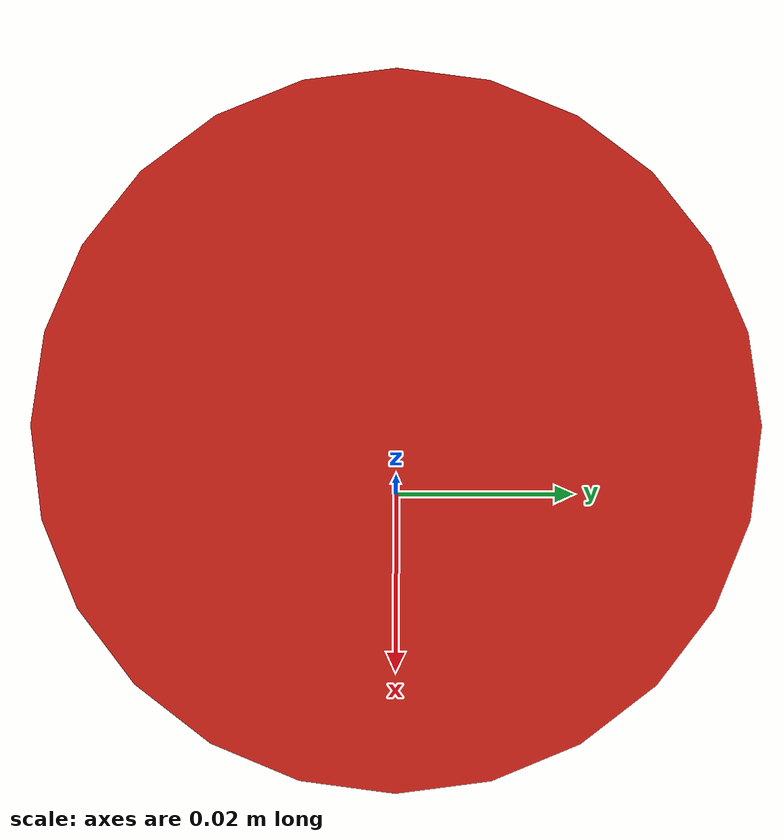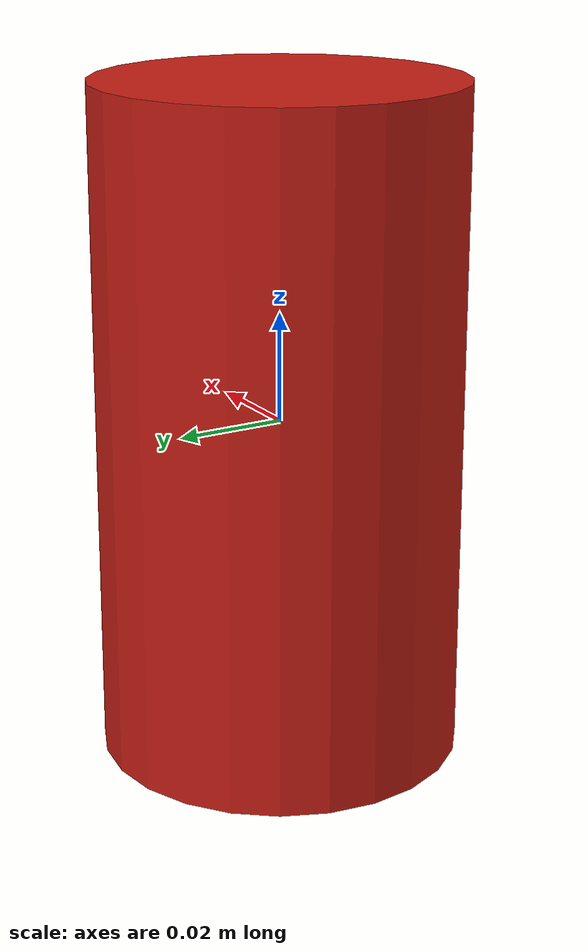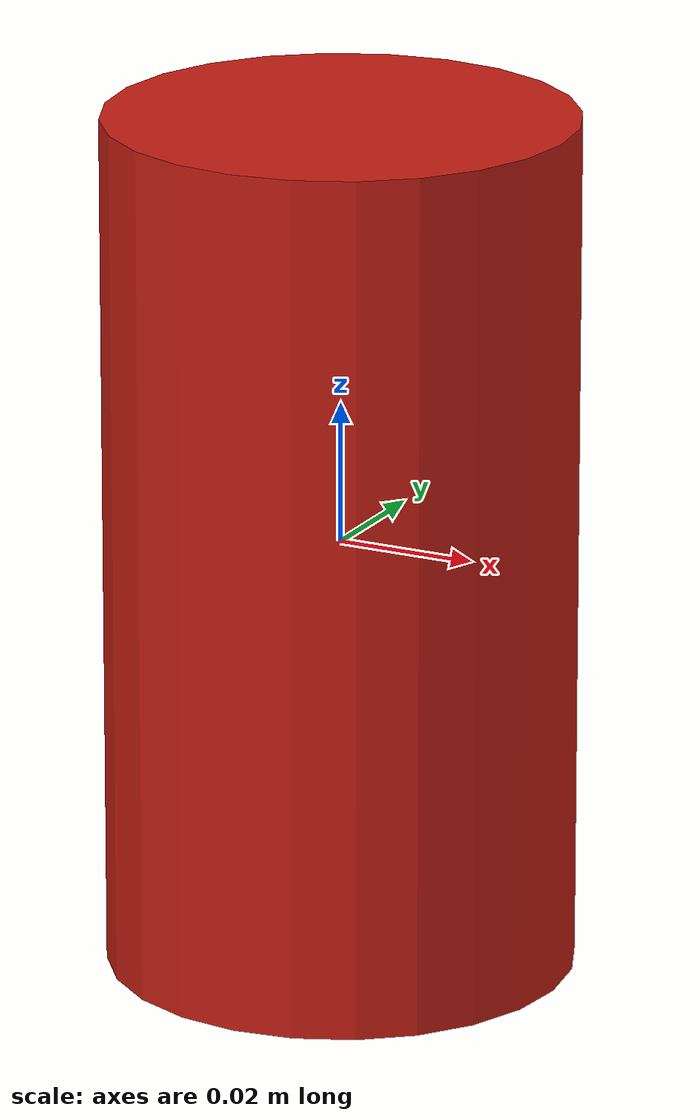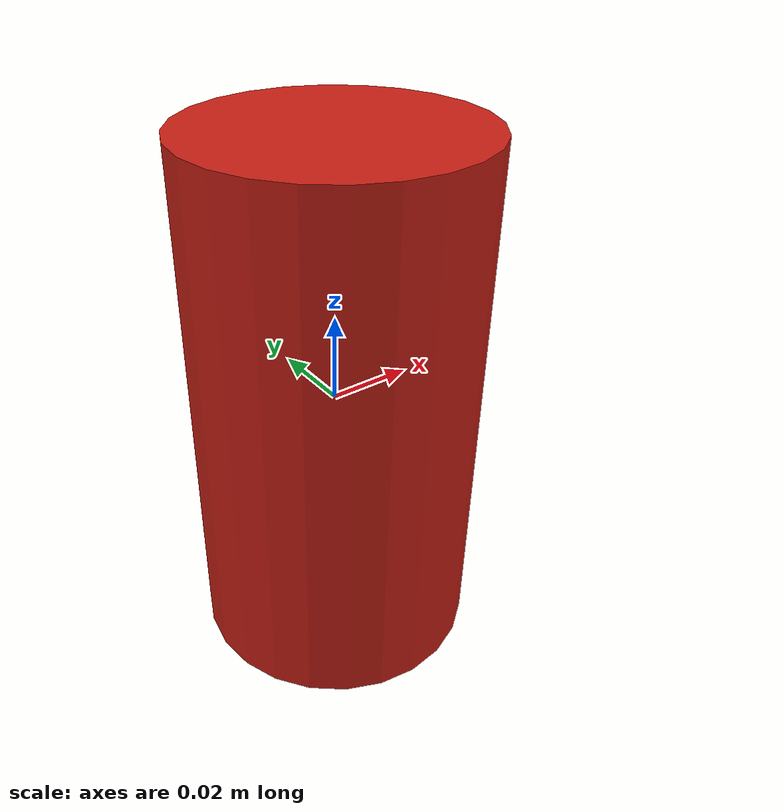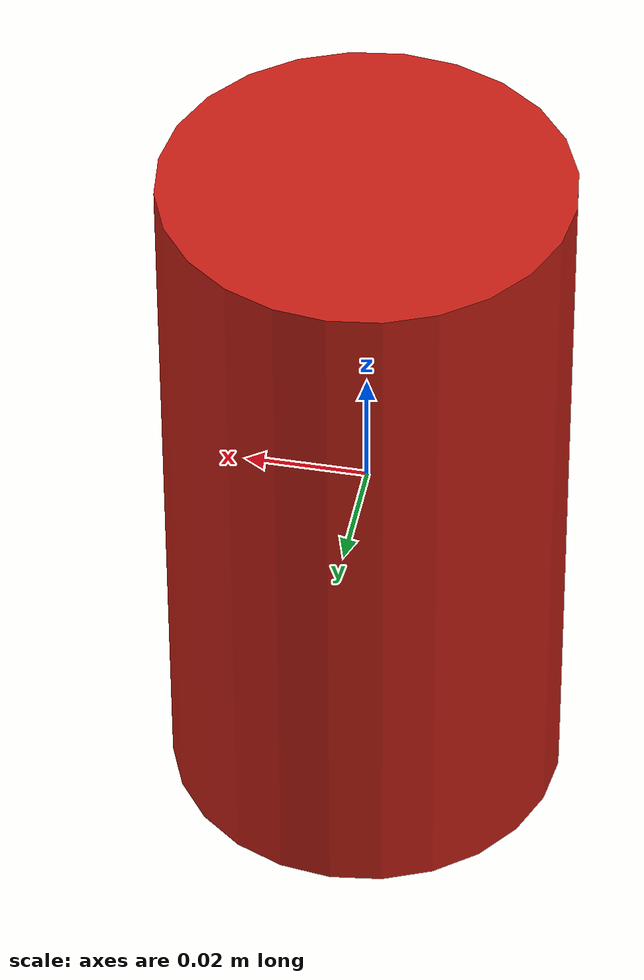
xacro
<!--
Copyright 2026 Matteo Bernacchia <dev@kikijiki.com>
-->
<?xml version="1.0"?>
<!-- SPDX-License-Identifier: MIT -->
<robot name="restocker_product" xmlns:xacro="http://www.ros.org/wiki/xacro">
  <xacro:arg name="radius" default="0.033"/>
  <xacro:arg name="height" default="0.122"/>
  <!-- A box product (CMB-119) sets `box_size` to "x y z" metres (width, depth, height); radius and
       height are then unused. Empty keeps the cylinder. -->
  <xacro:arg name="box_size" default=""/>
  <xacro:arg name="mass" default="0.355"/>
  <xacro:arg name="rgba" default="0.78 0.12 0.08 1.0"/>
  <xacro:arg name="friction" default="0.65"/>
  <xacro:arg name="static" default="false"/>
  <xacro:arg name="label_texture" default=""/>
  <xacro:arg name="visual_mesh" default=""/>
  <xacro:include filename="$(find restocker_description)/urdf/inertial_macros.xacro"/>

  <xacro:property name="product_radius" value="$(arg radius)"/>
  <xacro:property name="product_height" value="$(arg height)"/>
  <xacro:property name="product_mass" value="$(arg mass)"/>
  <xacro:property name="box_size" value="$(arg box_size)"/>
  <xacro:property name="is_box" value="${box_size != ''}"/>
  <xacro:if value="${is_box}">
    <xacro:property name="box_x" value="${float(box_size.split()[0])}"/>
    <xacro:property name="box_y" value="${float(box_size.split()[1])}"/>
    <xacro:property name="box_z" value="${float(box_size.split()[2])}"/>
  </xacro:if>
  <xacro:property name="label_texture" value="$(arg label_texture)"/>
  <xacro:property name="visual_mesh" value="$(arg visual_mesh)"/>

  <link name="product_body">
    <visual name="product_body_visual">
      <xacro:if value="${visual_mesh == '' and not is_box}">
        <geometry><cylinder radius="${product_radius}" length="${product_height}"/></geometry>
      </xacro:if>
      <xacro:if value="${visual_mesh == '' and is_box}">
        <geometry><box size="${box_x} ${box_y} ${box_z}"/></geometry>
      </xacro:if>
      <xacro:unless value="${visual_mesh == ''}">
        <geometry><mesh filename="file://${visual_mesh}"/></geometry>
      </xacro:unless>
      <material name="product_material"><color rgba="$(arg rgba)"/></material>
    </visual>
    <collision name="product_body_collision">
      <xacro:unless value="${is_box}">
        <geometry><cylinder radius="${product_radius}" length="${product_height}"/></geometry>
      </xacro:unless>
      <xacro:if value="${is_box}">
        <geometry><box size="${box_x} ${box_y} ${box_z}"/></geometry>
      </xacro:if>
    </collision>
    <xacro:unless value="${is_box}">
      <xacro:cylinder_inertial
        mass="${product_mass}" radius="${product_radius}" length="${product_height}"
        xyz="0 0 0" rpy="0 0 0"/>
    </xacro:unless>
    <xacro:if value="${is_box}">
      <xacro:box_inertial
        mass="${product_mass}" x="${box_x}" y="${box_y}" z="${box_z}" xyz="0 0 0" rpy="0 0 0"/>
    </xacro:if>
  </link>

  <gazebo reference="product_body">
    <mu1>$(arg friction)</mu1>
    <mu2>$(arg friction)</mu2>
    <kp>100000</kp>
    <kd>1</kd>
    <xacro:unless value="${label_texture == ''}">
      <visual>
        <material>
          <pbr>
            <metal>
              <albedo_map>${label_texture}</albedo_map>
              <metalness>0.0</metalness>
              <roughness>0.9</roughness>
            </metal>
          </pbr>
        </material>
      </visual>
    </xacro:unless>
  </gazebo>
  <gazebo><static>$(arg static)</static></gazebo>
</robot>

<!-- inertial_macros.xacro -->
<!-- SPDX-License-Identifier: MIT -->
<robot xmlns:xacro="http://www.ros.org/wiki/xacro">
  <xacro:macro name="box_inertial" params="mass x y z xyz rpy">
    <inertial>
      <origin xyz="${xyz}" rpy="${rpy}"/>
      <mass value="${mass}"/>
      <inertia
        ixx="${mass * (y * y + z * z) / 12.0}"
        ixy="0.0"
        ixz="0.0"
        iyy="${mass * (x * x + z * z) / 12.0}"
        iyz="0.0"
        izz="${mass * (x * x + y * y) / 12.0}"/>
    </inertial>
  </xacro:macro>

  <xacro:macro name="cylinder_inertial" params="mass radius length xyz rpy">
    <inertial>
      <origin xyz="${xyz}" rpy="${rpy}"/>
      <mass value="${mass}"/>
      <inertia
        ixx="${mass * (3.0 * radius * radius + length * length) / 12.0}"
        ixy="0.0"
        ixz="0.0"
        iyy="${mass * (3.0 * radius * radius + length * length) / 12.0}"
        iyz="0.0"
        izz="${mass * radius * radius / 2.0}"/>
    </inertial>
  </xacro:macro>
</robot>
